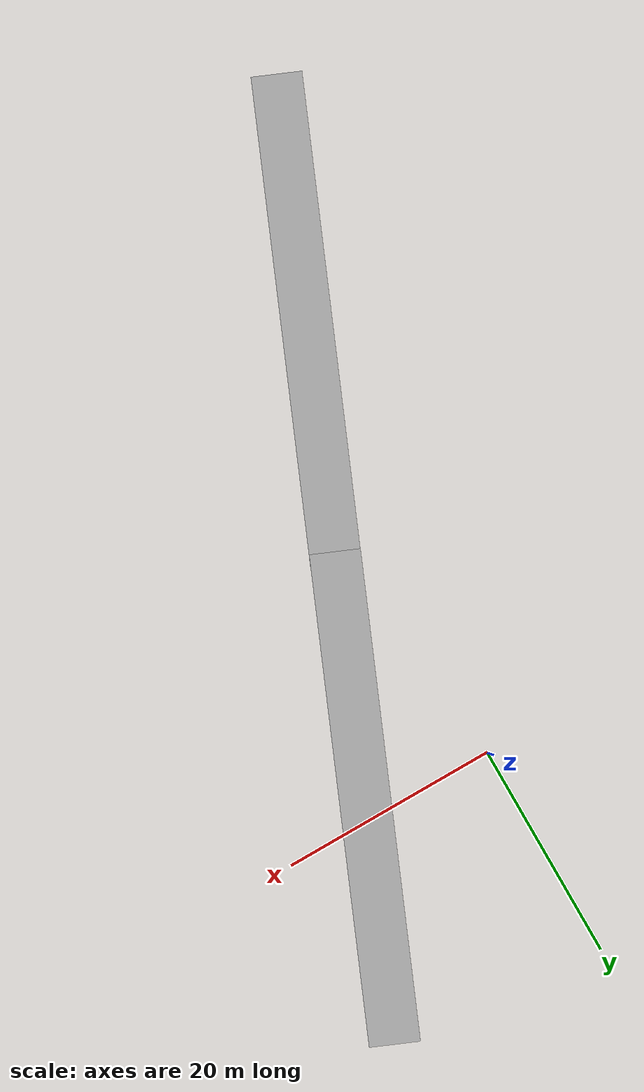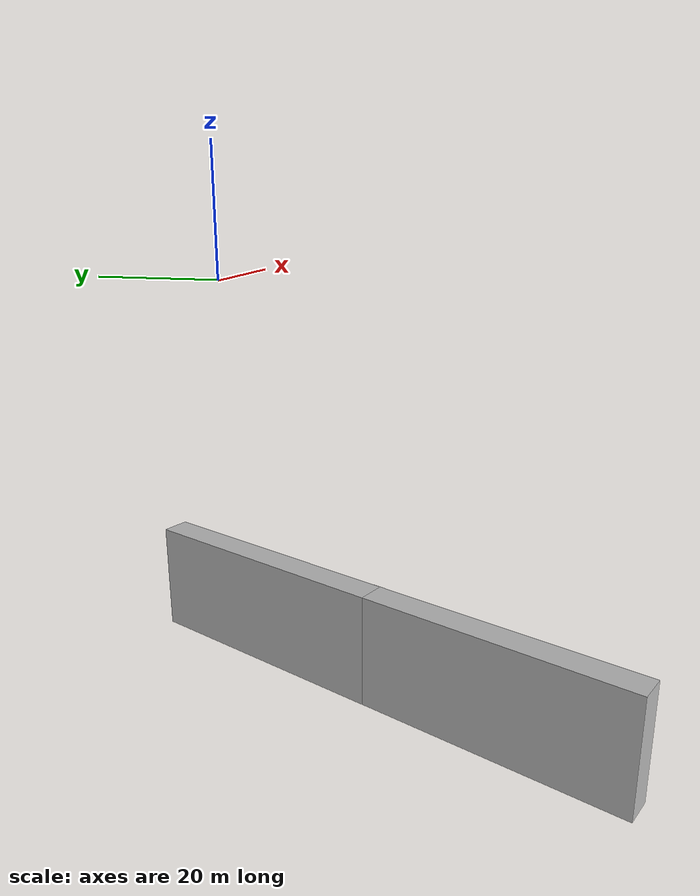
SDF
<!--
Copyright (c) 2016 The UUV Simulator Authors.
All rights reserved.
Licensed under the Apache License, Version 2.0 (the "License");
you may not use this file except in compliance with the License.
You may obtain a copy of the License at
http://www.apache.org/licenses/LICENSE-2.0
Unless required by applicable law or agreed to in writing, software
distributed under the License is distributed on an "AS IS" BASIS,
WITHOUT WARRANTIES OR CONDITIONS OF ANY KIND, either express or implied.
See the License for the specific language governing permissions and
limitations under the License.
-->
<sdf version="1.4">
 <world name="oceans_waves">
  <physics name="default_physics" default="true" type="ode">
   <max_step_size>0.002</max_step_size>
   <real_time_factor>1</real_time_factor>
   <real_time_update_rate>500</real_time_update_rate>
  </physics>
  <scene>
   <ambient>0.0 0.4 0.7 1.0</ambient>
   <sky><clouds><speed>12</speed></clouds></sky>
   <shadows>1</shadows>
   <fog>
    <color>0.1 0.2 0.3 1.0</color>
    <type>linear</type>
    <density>0.1</density>
    <start>50</start>
    <end>100</end>
   </fog>
  </scene>
  <spherical_coordinates>
   <latitude_deg>56.71897669633431</latitude_deg>
   <longitude_deg>3.515625</longitude_deg>
  </spherical_coordinates>
  <light type="directional" name="sun1">
   <pose>50 0 150 0 0 0</pose>
   <diffuse>1 1 1 1</diffuse>
   <specular>.1 .1 .1 1</specular>
   <direction>0.3 0.3 -1</direction>
   <cast_shadows>false</cast_shadows>
  </light>
  <light type="directional" name="sun_diffuse">
   <pose>-50 0 -150 0 0 0</pose>
   <diffuse>0.6 0.6 0.6 1</diffuse>
   <specular>0 0 0 1</specular>
   <direction>-0.3 -0.3 -1</direction>
   <cast_shadows>false</cast_shadows>
  </light>
  <include><uri>model://ned_frame</uri></include>
  <include>
   <uri>model://obstacles/CubeSoft_10</uri>
   <name>cube_10_3</name>
   <pose>21 21 -60 -3.14 1.57 -3.54</pose>
   <static>true</static>
  </include>
  <include>
   <uri>model://obstacles/CubeSoft_10</uri>
   <name>cube_10_5</name>
   <pose>2.8 -22 -60 -3.14 1.57 -3.54</pose>
   <static>true</static>
  </include>
  <plugin name="underwater_current_plugin" filename="libuuv_underwater_current_ros_plugin.so">
   <namespace>hydrodynamics</namespace>
   <constant_current>
    <topic>current_velocity</topic>
    <velocity><mean>0</mean><min>0</min><max>5</max><mu>0.0</mu><noiseAmp>0.0</noiseAmp></velocity>
    <horizontal_angle>
     <mean>0</mean>
     <min>-3.141592653589793238</min>
     <max>3.141592653589793238</max>
     <mu>0.0</mu>
     <noiseAmp>0.0</noiseAmp>
    </horizontal_angle>
    <vertical_angle>
     <mean>0</mean>
     <min>-3.141592653589793238</min>
     <max>3.141592653589793238</max>
     <mu>0.0</mu>
     <noiseAmp>0.0</noiseAmp>
    </vertical_angle>
   </constant_current>
  </plugin>
  <plugin name="sc_interface" filename="libuuv_sc_ros_interface_plugin.so"/>
 </world>
</sdf>

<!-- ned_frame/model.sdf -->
<sdf version='1.5'>
    <model name="world_ned">

      <pose>0 0 0 0 0 0</pose>
      <static>true</static>

      <link name="world_ned">
        <gravity>0</gravity>
        <pose>0 0 0 3.14159265359 0 1.5707963267948966</pose>

        <visual name="N_visual">
          <pose>0.25 0 0 1.5707963267948966 0 1.5707963267948966</pose>
          <geometry>
            <cylinder>
              <radius>0.01</radius>
              <length>0.5</length>
            </cylinder>
          </geometry>
          <material>
            <script>
              <uri>file://media/materials/scripts/gazebo.material</uri>
              <name>Gazebo/Red</name>
            </script>
          </material>
        </visual>

        <visual name="E_visual">
          <pose>0 0.25 0 1.5707963267948966 0 0</pose>
          <geometry>
            <cylinder>
              <radius>0.01</radius>
              <length>0.5</length>
            </cylinder>
          </geometry>
          <material>
            <script>
              <uri>file://media/materials/scripts/gazebo.material</uri>
              <name>Gazebo/Green</name>
            </script>
          </material>
        </visual>

        <visual name="D_visual">
          <pose>0 0 0.25 0 0 0</pose>
          <geometry>
            <cylinder>
              <radius>0.01</radius>
              <length>0.5</length>
            </cylinder>
          </geometry>
          <material>
            <script>
              <uri>file://media/materials/scripts/gazebo.material</uri>
              <name>Gazebo/Blue</name>
            </script>
          </material>
        </visual>
      </link>
    </model>
</sdf>

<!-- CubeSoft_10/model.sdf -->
<sdf version="1.6">
    <model name="CubeSoft">
        <static>true</static>
        <link name="link">
            <pose>0 0 0 1.57 3.14159 0</pose>
            <collision name="collision">
                <geometry>
                    <mesh>
                        <uri>meshes/Cuboid_5x5x8.stl</uri>
                        <scale>0.004 0.001 0.006</scale>
                    </mesh>
                </geometry>
            </collision>
            <visual name="visual">
                <geometry>
                    <mesh>
                        <uri>meshes/Cuboid_5x5x8.stl</uri>
                        <scale>0.004 0.001 0.006</scale>
                    </mesh>
                </geometry>
            </visual>
        </link>
    </model>
</sdf>
